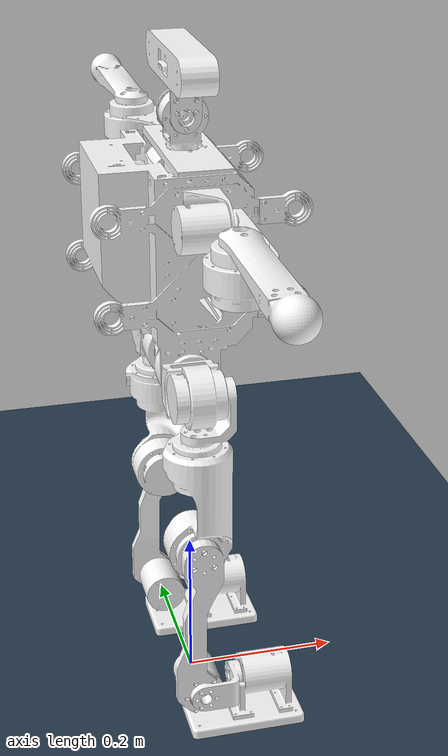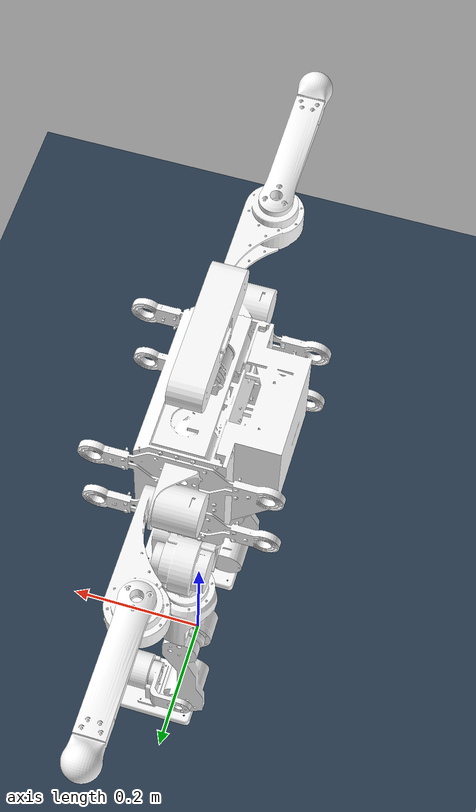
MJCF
<mujoco model="MOSC">
    <compiler angle="radian" />
    <size njmax="500" nconmax="100" />
    <asset>
        <texture name="texplane" type="2d" builtin="checker" rgb1=".2 .3 .4" rgb2=".1 0.15 0.2" width="512" height="512" mark="cross" markrgb=".8 .8 .8" />
        <material name="matplane" reflectance="0." texture="texplane" texrepeat="1 1" texuniform="true" />
        <mesh name="body" file="meshes/body_LowMesh.STL" />
        <mesh name="neck" file="meshes/neck.STL" />
        <mesh name="head" file="meshes/head.STL" />
        <mesh name="Rshoulder" file="meshes/Rshoulder.STL" />
        <mesh name="Rarm" file="meshes/Rarm.STL" />
        <mesh name="Rhand" file="meshes/Rhand.STL" />
        <mesh name="Lshoulder" file="meshes/Lshoulder.STL" />
        <mesh name="Larm" file="meshes/Larm.STL" />
        <mesh name="Lhand" file="meshes/Lhand.STL" />
        <mesh name="Rhip" file="meshes/Rhip.STL" />
        <mesh name="Rlap" file="meshes/Rlap.STL" />
        <mesh name="Rleg1" file="meshes/Rleg1.STL" />
        <mesh name="Rleg2" file="meshes/Rleg2.STL" />
        <mesh name="Rankle" file="meshes/Rankle.STL" />
        <mesh name="Rfoot" file="meshes/Rfoot.STL" />
        <mesh name="Lhip" file="meshes/Lhip.STL" />
        <mesh name="Llap" file="meshes/Llap.STL" />
        <mesh name="Lleg1" file="meshes/Lleg1.STL" />
        <mesh name="Lleg2" file="meshes/Lleg2.STL" />
        <mesh name="Lankle" file="meshes/Lankle.STL" />
        <mesh name="Lfoot" file="meshes/Lfoot.STL" />
    </asset>
    <default>
		<joint limited="false" />
		<motor ctrllimited="true" />
		<geom condim="4" contype="1" conaffinity="15" friction="0.9 0.2 0.2" />
	</default>
    <worldbody>
    <light directional="true" diffuse=".4 .4 .4" specular="0.1 0.1 0.1" pos="0 0 5.0" dir="0 0 -1" castshadow="false" />
	<light directional="true" diffuse=".6 .6 .6" specular="0.2 0.2 0.2" pos="0 0 4" dir="0 0 -1" />
	<geom name="ground" type="plane" size="0 0 1" pos="0.001 0 0" quat="1 0 0 0" material="matplane" condim="1" conaffinity="15" />

    <body name="base_link" pos="0.0 0.0 0.51">
        <joint type='ball' limited='false' />
        <site name='imu' size='0.01' pos='0.0 0 0.0'/>
        <joint type='slide' axis='1 0 0' limited='false' />
        <joint type='slide' axis='0 1 0' limited='false' />
        <joint type='slide' axis='0 0 1' limited='false' />
        <geom type="mesh" rgba="1 1 1 1" mesh="body" />
        <body name="neck" pos="-0.00499961 0 0.2301" quat="0.707107 0 0 0.707107">
            <inertial pos="1.95467e-05 8.24112e-05 0.0373619" quat="0.999021 -0.00783606 -0.015633 -0.0406329" mass="0.225362" diaginertia="0.000108188 0.000103137 7.38934e-05" />
            <joint name="b_n" pos="0 0 0" axis="0 0 -1" />
            <geom type="mesh" rgba="1 1 1 1" mesh="neck" />
            <body name="head" pos="-0.0191493 0 0.0424996" quat="0.5 0.5 -0.5 -0.5">
                <inertial pos="-0.00153335 0.0550979 -0.0177266" quat="0.9997 0.0155182 0.000196967 0.0189515" mass="0.312674" diaginertia="0.000845202 0.000792646 0.000141705" />
                <joint name="n_h" pos="0 0 0" axis="0 0 1" />
                <geom type="mesh" rgba="1 1 1 1" mesh="head" />
            </body>
        </body>
        <body name="Rshoulder" pos="-0.01 -0.101 0.1821" quat="0 0 0.707107 0.707107">
            <inertial pos="0.0045128 3.9857e-05 -0.043497" quat="0.687694 -0.136177 -0.136176 0.699992" mass="0.46181" diaginertia="0.000286045 0.000272982 0.000220713" />
            <joint name="b_Rs" pos="0 0 0" axis="0 0 -1" />
            <geom type="mesh" rgba="1 1 1 1" mesh="Rshoulder" />
            <body name="Rarm" pos="-0.0209999 -5.20848e-05 -0.049" quat="0.707106 0.000876893 0.707106 -0.000876893">
                <inertial pos="0.12307 0.00022433 0.015476" quat="0.549953 0.438888 0.42888 0.56656" mass="0.72685" diaginertia="0.00165704 0.00162754 0.000387868" />
                <joint name="Rs_Ra" pos="0 0 0" axis="0 0 1" />
                <geom type="mesh" rgba="1 1 1 1" mesh="Rarm" />
                <body name="Rhand" pos="0.14 0.03135 0.021" quat="0 0 0.707107 0.707107">
                    <inertial pos="-0.11427 -6.7327e-07 0.0028051" quat="1.73503e-05 0.690192 1.46636e-05 0.723626" mass="0.28189" diaginertia="0.00146697 0.0014432 5.04168e-05" />
                    <joint name="Ra_Rh" pos="0 0 0" axis="0 0 -1" />
                    <geom type="mesh" rgba="1 1 1 1" mesh="Rhand" />
                </body>
            </body>
        </body>
        <body name="Lshoulder" pos="-0.01 0.101 0.1821" quat="0 0 0.707107 0.707107">
            <inertial pos="0.0045129 2.8676e-05 0.043497" quat="0.688559 0.136343 0.136002 0.699143" mass="0.46181" diaginertia="0.000286043 0.000272983 0.000220714" />
            <joint name="b_Ls" pos="0 0 0" axis="0 0 -1" />
            <geom type="mesh" rgba="1 1 1 1" mesh="Lshoulder" />
            <body name="Larm" pos="-0.021 0 0.049" quat="0.707107 0 0.707107 0">
                <inertial pos="-0.1231 0.00022433 0.015507" quat="0.426386 0.569398 0.547137 0.44116" mass="0.72685" diaginertia="0.00165815 0.00162843 0.000387914" />
                <joint name="Ls_La" pos="0 0 0" axis="0 0 1" />
                <geom type="mesh" rgba="1 1 1 1" mesh="Larm" />
                <body name="Lhand" pos="-0.14 0.03135 0.021" quat="0.707107 0.707107 0 0">
                    <inertial pos="-0.11427 3.38e-07 -0.0028052" quat="0 0.723626 0 0.690192" mass="0.2819" diaginertia="0.00146697 0.0014432 5.04188e-05" />
                    <joint name="La_Lh" pos="0 0 0" axis="0 0 -1" />
                    <geom type="mesh" rgba="1 1 1 1" mesh="Lhand" />
                </body>
            </body>
        </body>
        <body name="Rhip" pos="-0.015 -0.0672 -0.0399" quat="0 0 0.707107 0.707107">
            <inertial pos="0.00046534 -4.8738e-06 -0.043634" quat="0.998704 0.00021969 0.0505891 0.00561917" mass="0.68971" diaginertia="0.000521793 0.000513959 0.000411928" />
            <joint name="b_Rh" pos="0 0 0" axis="0 0 1" />
            <geom type="mesh" rgba="1 1 1 1" mesh="Rhip" />
            <body name="Rlap" pos="-0.0312 0 -0.0493" quat="0.707107 0 0.707107 0">
                <inertial pos="0 -0.03086 0.0069068" quat="0.888924 0.458055 0 0" mass="0.12125" diaginertia="9.9252e-05 9.7938e-05 3.1213e-05" />
                <joint name="Rh_Rl" pos="0 0 0" axis="0 0 -1" />
                <geom type="mesh" rgba="1 1 1 1" mesh="Rlap" />
                <body name="Rleg1" pos="0 -0.057 0.032" quat="0 0 0.707107 0.707107">
                    <inertial pos="0.0033299 -0.00182044 -0.0895096" quat="0.927379 0.0234381 -0.0606723 -0.368425" mass="1.39974" diaginertia="0.00599239 0.00589001 0.00101771" />
                    <joint name="Rl_Rl1" pos="0 0 0" axis="0 0 -1" />
                    <geom type="mesh" rgba="1 1 1 1" mesh="Rleg1" />
                    <body name="Rleg2" pos="-0.0162 0 -0.1532" quat="0.5 0.5 -0.5 -0.5">
                        <inertial pos="-0.0025189 -0.14339 -0.0055217" quat="0.622039 0.722366 -0.229813 0.196066" mass="0.66458" diaginertia="0.00438581 0.00431472 0.00028574" />
                        <joint name="Rl1_Rl2" pos="0 0 0" axis="0 0 -1" />
                        <geom type="mesh" rgba="1 1 1 1" mesh="Rleg2" />
                        <body name="Rankle" pos="0 -0.2 0.0098">
                            <inertial pos="0.026526 0 -0.0036121" quat="0.323256 0.628892 0.628892 0.323256" mass="0.099798" diaginertia="7.8396e-05 7.63351e-05 2.41339e-05" />
                            <joint name="Rl2_Ra" pos="0 0 0" axis="0 0 -1" />
                            <geom type="mesh" rgba="1 1 1 1" mesh="Rankle" />
                            <body name="Rfoot" pos="0.0545 0 -0.026" quat="0.707107 0 0.707107 0">
                                <inertial pos="0 -0.0165148 0.0227182" quat="0.973791 -0.227447 0 0" mass="0.644241" diaginertia="0.000982839 0.000902925 0.000553376" />
                                <joint name="Ra_Rf" pos="0 0 0" axis="0 0 1" />
                                <geom type="mesh" rgba="1 1 1 1" mesh="Rfoot" />
                            </body>
                        </body>
                    </body>
                </body>
            </body>
        </body>
        <body name="Lhip" pos="-0.015 0.0672 -0.0399" quat="0 0 0.707107 0.707107">
            <inertial pos="0.00046506 4.8751e-06 0.043645" quat="0.998699 0.00022094 -0.0506725 -0.00563274" mass="0.68953" diaginertia="0.000521464 0.000513649 0.000411857" />
            <joint name="b_Lh" pos="0 0 0" axis="0 0 -1" />
            <geom type="mesh" rgba="1 1 1 1" mesh="Lhip" />
            <body name="Llap" pos="-0.0312 0 0.0493" quat="0.707107 0 0.707107 0">
                <inertial pos="0 -0.03086 0.0069068" quat="0.888924 0.458055 0 0" mass="0.12125" diaginertia="9.9252e-05 9.7938e-05 3.1213e-05" />
                <joint name="Lh_Ll" pos="0 0 0" axis="0 0 -1" />
                <geom type="mesh" rgba="1 1 1 1" mesh="Llap" />
                <body name="Lleg1" pos="0 -0.057 0.032" quat="0 0 -0.707107 -0.707107">
                    <inertial pos="-0.00334622 -0.00180411 -0.0895144" quat="0.927406 0.0233212 0.0606357 0.368371" mass="1.39974" diaginertia="0.00599321 0.00589066 0.00101782" />
                    <joint name="Ll_Ll1" pos="0 0 0" axis="0 0 -1" />
                    <geom type="mesh" rgba="1 1 1 1" mesh="Lleg1" />
                    <body name="Lleg2" pos="0.0162 0 -0.1532" quat="0.5 0.5 0.5 0.5">
                        <inertial pos="0.0025362 -0.14342 -0.0055217" quat="0.622905 0.723389 0.22658 -0.193284" mass="0.66458" diaginertia="0.00438854 0.00431768 0.000284441" />
                        <joint name="Ll1_Ll2" pos="0 0 0" axis="0 0 -1" />
                        <geom type="mesh" rgba="1 1 1 1" mesh="Lleg2" />
                        <body name="Lankle" pos="0 -0.2 0.0098">
                            <inertial pos="-0.026526 0 -0.0036121" quat="0.628892 0.323256 0.323256 0.628892" mass="0.099798" diaginertia="7.8396e-05 7.63351e-05 2.41339e-05" />
                            <joint name="Ll2_La" pos="0 0 0" axis="0 0 -1" />
                            <geom type="mesh" rgba="1 1 1 1" mesh="Lankle" />
                            <body name="Lfoot" pos="-0.0545 0 -0.026" quat="0.707107 0 0.707107 0">
                                <inertial pos="0 -0.0165148 -0.0227182" quat="0.973791 0.227447 0 0" mass="0.644241" diaginertia="0.000982839 0.000902925 0.000553376" />
                                <joint name="La_Lf" pos="0 0 0" axis="0 0 -1" />
                                <geom type="mesh" rgba="1 1 1 1" mesh="Lfoot" />
                            </body>
                        </body>
                    </body>
                </body>
            </body>
        </body>
    </body>
    </worldbody>
	    <actuator>
		<motor name="b_Lh_joint" joint="b_Lh" gear="1" ctrllimited="true" ctrlrange="-200 200" />
		<motor name="b_Ls_joint" joint="b_Ls" gear="1" ctrllimited="true" ctrlrange="-200 200" />
		<motor name="b_Rh_joint" joint="b_Rh" gear="1" ctrllimited="true" ctrlrange="-200 200" />
		<motor name="b_Rs_joint" joint="b_Rs" gear="1" ctrllimited="true" ctrlrange="-200 200" />
		<motor name="b_n_joint" joint="b_n" gear="1" ctrllimited="true" ctrlrange="-200 200" />
		<motor name="Lh_Ll_joint" joint="Lh_Ll" gear="1" ctrllimited="true" ctrlrange="-200 200" />
		<motor name="Ls_La_joint" joint="Ls_La" gear="1" ctrllimited="true" ctrlrange="-200 200" />
		<motor name="Rh_Rl_joint" joint="Rh_Rl" gear="1" ctrllimited="true" ctrlrange="-200 200" />
		<motor name="Rs_Ra_joint" joint="Rs_Ra" gear="1" ctrllimited="true" ctrlrange="-200 200" />
		<motor name="n_h_joint" joint="n_h" gear="1" ctrllimited="true" ctrlrange="-200 200" />
		<motor name="Ll_Ll1_joint" joint="Ll_Ll1" gear="1" ctrllimited="true" ctrlrange="-200 200" />
		<motor name="La_Lh_joint" joint="La_Lh" gear="1" ctrllimited="true" ctrlrange="-200 200" />
		<motor name="Rl_Rl1_joint" joint="Rl_Rl1" gear="1" ctrllimited="true" ctrlrange="-200 200" />
		<motor name="Ra_Rh_joint" joint="Ra_Rh" gear="1" ctrllimited="true" ctrlrange="-200 200" />
		<motor name="Ll1_Ll2_joint" joint="Ll1_Ll2" gear="1" ctrllimited="true" ctrlrange="-200 200" />
		<motor name="Rl1_Rl2_joint" joint="Rl1_Rl2" gear="1" ctrllimited="true" ctrlrange="-200 200" />
		<motor name="Ll2_La_joint" joint="Ll2_La" gear="1" ctrllimited="true" ctrlrange="-200 200" />
		<motor name="Rl2_Ra_joint" joint="Rl2_Ra" gear="1" ctrllimited="true" ctrlrange="-200 200" />
		<motor name="La_Lf_joint" joint="La_Lf" gear="1" ctrllimited="true" ctrlrange="-200 200" />
		<motor name="Ra_Rf_joint" joint="Ra_Rf" gear="1" ctrllimited="true" ctrlrange="-200 200" />
		</actuator>
		<sensor>
		<!-- Position sensors -->
		<actuatorpos name="b_Lh_joint_p" actuator="b_Lh_joint" user="13" noise="1e-3"/>
		<actuatorpos name="b_Ls_joint_p" actuator="b_Ls_joint" user="13" noise="1e-3"/>
		<actuatorpos name="b_Rh_joint_p" actuator="b_Rh_joint" user="13" noise="1e-3"/>
		<actuatorpos name="b_Rs_joint_p" actuator="b_Rs_joint" user="13" noise="1e-3"/>
		<actuatorpos name="b_n_joint_p" actuator="b_n_joint" user="13" noise="1e-3"/>
		<actuatorpos name="Lh_Ll_joint_p" actuator="Lh_Ll_joint" user="13" noise="1e-3"/>
		<actuatorpos name="Ls_La_joint_p" actuator="Ls_La_joint" user="13" noise="1e-3"/>
		<actuatorpos name="Rh_Rl_joint_p" actuator="Rh_Rl_joint" user="13" noise="1e-3"/>
		<actuatorpos name="Rs_Ra_joint_p" actuator="Rs_Ra_joint" user="13" noise="1e-3"/>
		<actuatorpos name="n_h_joint_p" actuator="n_h_joint" user="13" noise="1e-3"/>
		<actuatorpos name="Ll_Ll1_joint_p" actuator="Ll_Ll1_joint" user="13" noise="1e-3"/>
		<actuatorpos name="La_Lh_joint_p" actuator="La_Lh_joint" user="13" noise="1e-3"/>
		<actuatorpos name="Rl_Rl1_joint_p" actuator="Rl_Rl1_joint" user="13" noise="1e-3"/>
		<actuatorpos name="Ra_Rh_joint_p" actuator="Ra_Rh_joint" user="13" noise="1e-3"/>
		<actuatorpos name="Ll1_Ll2_joint_p" actuator="Ll1_Ll2_joint" user="13" noise="1e-3"/>
		<actuatorpos name="Rl1_Rl2_joint_p" actuator="Rl1_Rl2_joint" user="13" noise="1e-3"/>
		<actuatorpos name="Ll2_La_joint_p" actuator="Ll2_La_joint" user="13" noise="1e-3"/>
		<actuatorpos name="Rl2_Ra_joint_p" actuator="Rl2_Ra_joint" user="13" noise="1e-3"/>
		<actuatorpos name="La_Lf_joint_p" actuator="La_Lf_joint" user="13" noise="1e-3"/>
		<actuatorpos name="Ra_Rf_joint_p" actuator="Ra_Rf_joint" user="13" noise="1e-3"/>
		<!-- Velocity sensors -->
		<actuatorvel name="b_Lh_joint_v" actuator="b_Lh_joint" user="13" noise="1e-3"/>
		<actuatorvel name="b_Ls_joint_v" actuator="b_Ls_joint" user="13" noise="1e-3"/>
		<actuatorvel name="b_Rh_joint_v" actuator="b_Rh_joint" user="13" noise="1e-3"/>
		<actuatorvel name="b_Rs_joint_v" actuator="b_Rs_joint" user="13" noise="1e-3"/>
		<actuatorvel name="b_n_joint_v" actuator="b_n_joint" user="13" noise="1e-3"/>
		<actuatorvel name="Lh_Ll_joint_v" actuator="Lh_Ll_joint" user="13" noise="1e-3"/>
		<actuatorvel name="Ls_La_joint_v" actuator="Ls_La_joint" user="13" noise="1e-3"/>
		<actuatorvel name="Rh_Rl_joint_v" actuator="Rh_Rl_joint" user="13" noise="1e-3"/>
		<actuatorvel name="Rs_Ra_joint_v" actuator="Rs_Ra_joint" user="13" noise="1e-3"/>
		<actuatorvel name="n_h_joint_v" actuator="n_h_joint" user="13" noise="1e-3"/>
		<actuatorvel name="Ll_Ll1_joint_v" actuator="Ll_Ll1_joint" user="13" noise="1e-3"/>
		<actuatorvel name="La_Lh_joint_v" actuator="La_Lh_joint" user="13" noise="1e-3"/>
		<actuatorvel name="Rl_Rl1_joint_v" actuator="Rl_Rl1_joint" user="13" noise="1e-3"/>
		<actuatorvel name="Ra_Rh_joint_v" actuator="Ra_Rh_joint" user="13" noise="1e-3"/>
		<actuatorvel name="Ll1_Ll2_joint_v" actuator="Ll1_Ll2_joint" user="13" noise="1e-3"/>
		<actuatorvel name="Rl1_Rl2_joint_v" actuator="Rl1_Rl2_joint" user="13" noise="1e-3"/>
		<actuatorvel name="Ll2_La_joint_v" actuator="Ll2_La_joint" user="13" noise="1e-3"/>
		<actuatorvel name="Rl2_Ra_joint_v" actuator="Rl2_Ra_joint" user="13" noise="1e-3"/>
		<actuatorvel name="La_Lf_joint_v" actuator="La_Lf_joint" user="13" noise="1e-3"/>
		<actuatorvel name="Ra_Rf_joint_v" actuator="Ra_Rf_joint" user="13" noise="1e-3"/>

		<framequat name="orientation" objtype="site" noise="0.001" objname="imu" />
		<framepos name="position" objtype="site" noise="0.001" objname="imu" />
		<gyro name="angular-velocity" site="imu" noise="0.005" cutoff="34.9" />
		<velocimeter name="linear-velocity" site="imu" noise="0.001" cutoff="30" />

	</sensor>
</mujoco>
